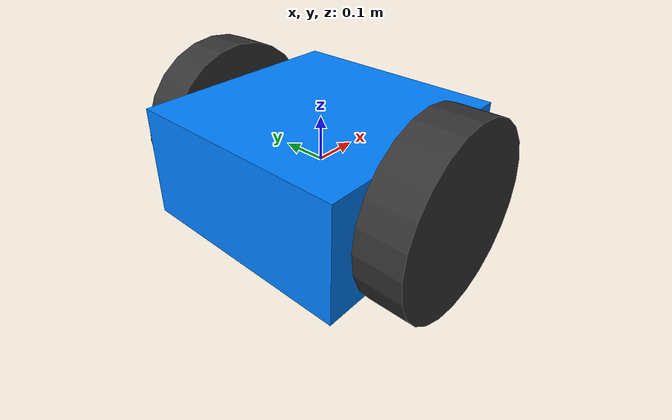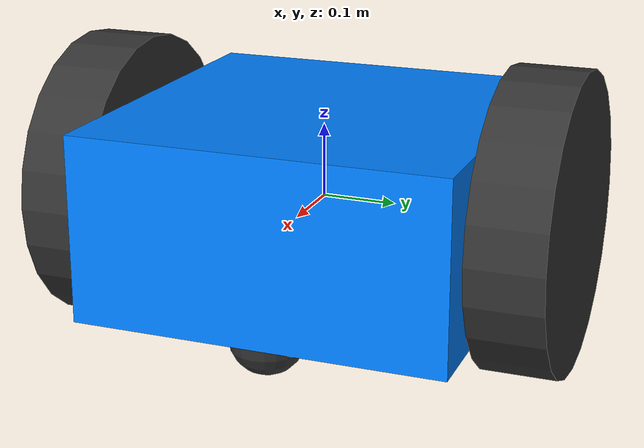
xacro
<?xml version='1.0'?>
<robot name="dd_robot">

  <!-- Base Link -->
  <link name="base_link">
    <visual>
      <origin xyz="0 0 0" rpy="0 0 0" />
      <geometry>
          <box size="0.5 0.5 0.25"/>
      </geometry>
      <material name="blue">
        <color rgba="0 0.5 1 1"/>
      </material>
    </visual>
    <!-- Base collision, mass and inertia -->
    <collision>
      <origin xyz="0 0 0" rpy="0 0 0" />
      <geometry>
          <box size="0.5 0.5 0.25"/>
      </geometry>
    </collision>
    <inertial>
      <mass value="5"/>
      <inertia ixx="0.13" ixy="0.0" ixz="0.0" iyy="0.21" iyz="0.0" izz="0.13"/>
    </inertial>
  </link>

  <!-- Caster -->
  <link name="caster">
    <visual>
      <origin xyz="0.0 0 0" rpy="0 0 0" />
      <geometry>
        <sphere radius="0.05" />
      </geometry>
      <material name="darkgray">
        <color rgba=".2 .2 .2 1"/>
      </material>
    </visual>
    <!-- Caster collision, mass and inertia -->
    <collision>
      <origin xyz="0 0 0" rpy="0 0 0" />
      <geometry>
        <sphere radius="0.05" />
      </geometry>
    </collision>
    <inertial>
      <mass value="0.5"/>
      <inertia ixx="0.0001" ixy="0.0" ixz="0.0" iyy="0.0001" iyz="0.0" izz="0.0001"/>
    </inertial>
  </link>

  <!-- Caster joint -->
  <joint name="joint_caster" type="fixed">
    <parent link="base_link"/>
    <child link="caster"/>
    <origin xyz="0.2 0 -0.125" rpy="0 0 0" />
  </joint>

  <!-- Right Wheel -->
  <link name="right_wheel">
    <visual>
      <origin xyz="0 0 0" rpy="1.570795 0 0" />
      <geometry>
          <cylinder length="0.1" radius="0.2" />
      </geometry>
      <material name="darkgray">
        <color rgba=".2 .2 .2 1"/>
      </material>
    </visual>
    <!-- Right Wheel collision, mass and inertia -->
    <collision>
      <origin xyz="0 0 0" rpy="1.570795 0 0" />
      <geometry>
          <cylinder length="0.1" radius="0.2" />
      </geometry>
    </collision>
    <inertial>
      <mass value="0.5"/>
      <inertia ixx="0.01" ixy="0.0" ixz="0.0" iyy="0.005" iyz="0.0" izz="0.005"/>
    </inertial>

  </link>

  <!-- Right Wheel joint -->
  <joint name="joint_right_wheel" type="continuous">
    <parent link="base_link"/>
    <child link="right_wheel"/>
    <origin xyz="0 -0.30 0" rpy="0 0 0" />
    <axis xyz="0 1 0" />
  </joint>

  <!-- Left Wheel -->
  <link name="left_wheel">
    <visual>
      <origin xyz="0 0 0" rpy="1.570795 0 0" />
      <geometry>
          <cylinder length="0.1" radius="0.2" />
      </geometry>
      <material name="darkgray">
        <color rgba=".2 .2 .2 1"/>
      </material>
    </visual>
    <!-- Left Wheel collision, mass and inertia -->
    <collision>
      <origin xyz="0 0 0" rpy="1.570795 0 0" />
      <geometry>
          <cylinder length="0.1" radius="0.2" />
      </geometry>
    </collision>
    <inertial>
      <mass value="0.5"/>
      <inertia ixx="0.01" ixy="0.0" ixz="0.0" iyy="0.005" iyz="0.0" izz="0.005"/>
    </inertial>
  </link>

  <!-- Left Wheel joint -->
  <joint name="joint_left_wheel" type="continuous">
    <parent link="base_link"/>
    <child link="left_wheel"/>
    <origin xyz="0 0.30 0" rpy="0 0 0" />
    <axis xyz="0 1 0" />
  </joint>

  <gazebo reference="base_link">
    <material>Gazebo/Blue</material>
  </gazebo>
  <gazebo reference="right_wheel">
    <material>Gazebo/Black</material>
  </gazebo>
    <gazebo reference="left_wheel">
  <material>Gazebo/Black</material>
  </gazebo>

  <gazebo reference="caster">
    <material>Gazebo/Red</material>
  </gazebo>
</robot>
